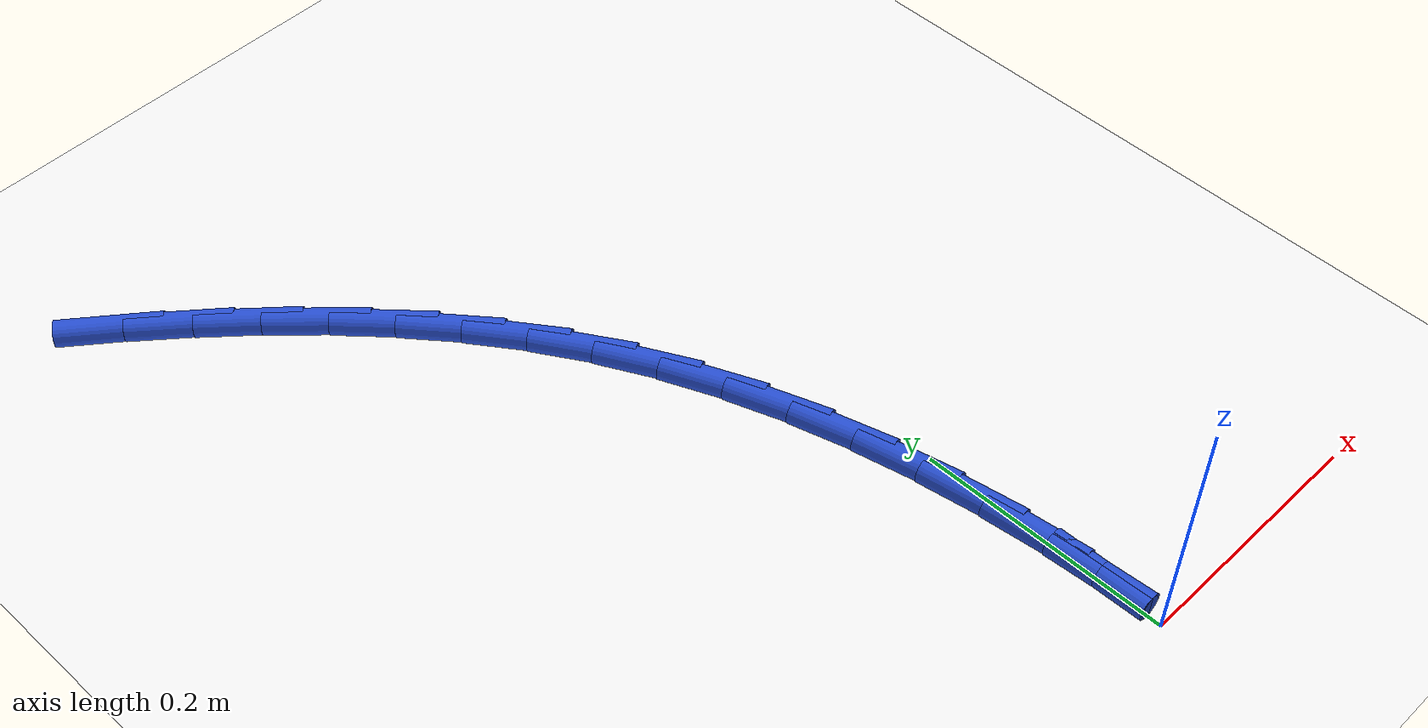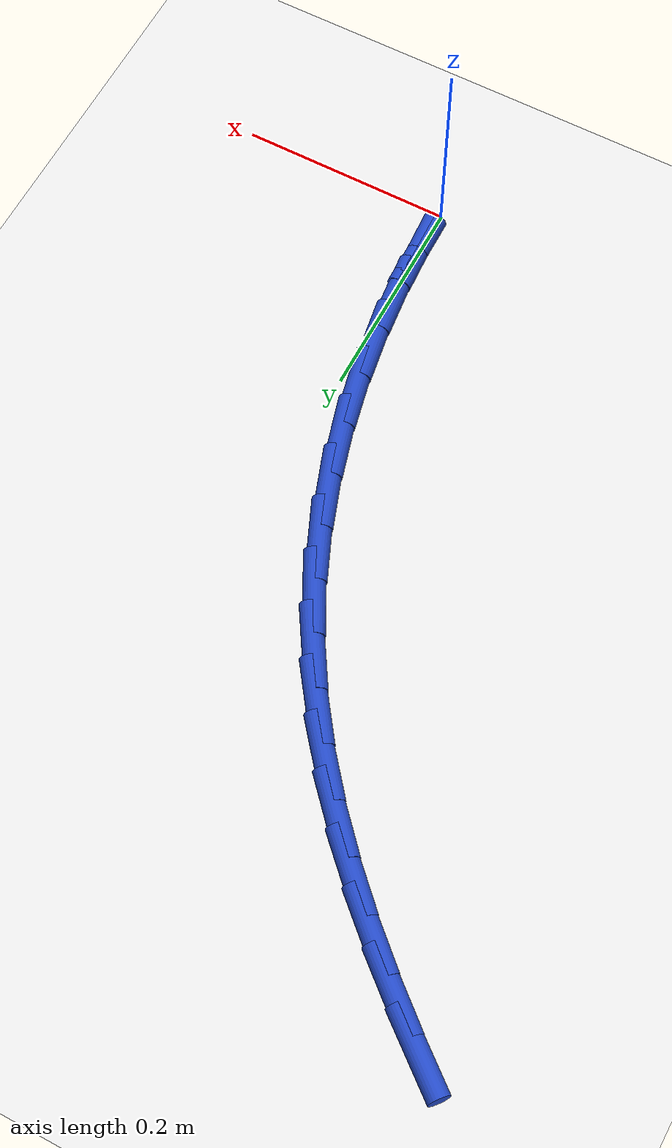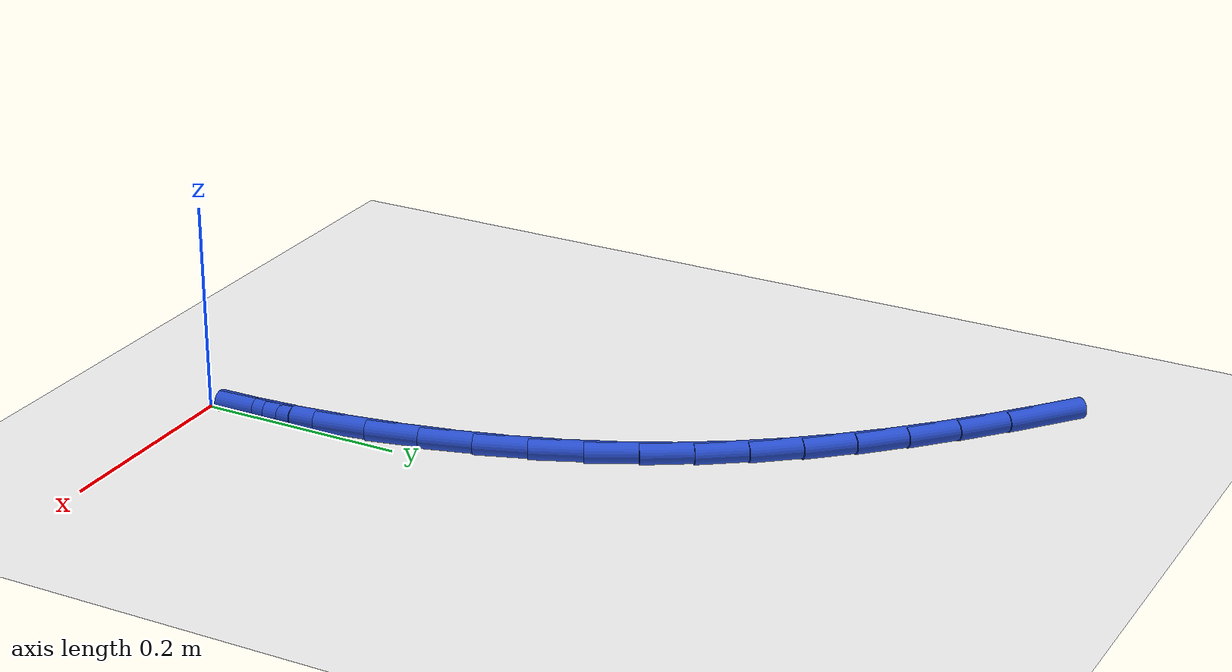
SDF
<sdf version="1.6">
 <world name="default">
  <model name="ground_plane">
   <static>1</static>
   <link name="link">
    <collision name="collision">
     <geometry><plane><normal>0 0 1</normal><size>100 100</size></plane></geometry>
     <surface><friction><ode><mu>100</mu><mu2>50</mu2></ode></friction></surface>
    </collision>
    <visual name="visual">
     <cast_shadows>0</cast_shadows>
     <geometry><plane><normal>0 0 1</normal><size>100 100</size></plane></geometry>
     <material>
      <script><uri>file://media/materials/scripts/gazebo.material</uri><name>Gazebo/WhiteGlow</name></script>
     </material>
    </visual>
   </link>
  </model>
  <model name="line">
   <link name="link_1">
    <pose>-0.0007722326352914149 0.05163585551971858 0.01 0 1.57 -1.5063671672619579</pose>
    <collision name="collision">
     <geometry><cylinder><radius>0.01</radius><length>0.08</length></cylinder></geometry>
    </collision>
    <visual name="visual">
     <material>
      <script><name>Gazebo/Blue</name><uri>file://media/materials/scripts/gazebo.material</uri></script>
     </material>
     <geometry><cylinder><radius>0.01</radius><length>0.08</length></cylinder></geometry>
    </visual>
   </link>
   <link name="link_2">
    <pose>-0.004109959740773728 0.10336875750954569 0.01 0 1.57 -1.4556124186254047</pose>
    <collision name="collision">
     <geometry><cylinder><radius>0.01</radius><length>0.08</length></cylinder></geometry>
    </collision>
    <visual name="visual">
     <material>
      <script><name>Gazebo/Blue</name><uri>file://media/materials/scripts/gazebo.material</uri></script>
     </material>
     <geometry><cylinder><radius>0.01</radius><length>0.08</length></cylinder></geometry>
    </visual>
   </link>
   <link name="link_3">
    <pose>-0.010072090712335637 0.15490148046679625 0.01 0 1.57 -1.4029882069615507</pose>
    <collision name="collision">
     <geometry><cylinder><radius>0.01</radius><length>0.08</length></cylinder></geometry>
    </collision>
    <visual name="visual">
     <material>
      <script><name>Gazebo/Blue</name><uri>file://media/materials/scripts/gazebo.material</uri></script>
     </material>
     <geometry><cylinder><radius>0.01</radius><length>0.08</length></cylinder></geometry>
    </visual>
   </link>
   <link name="link_4">
    <pose>-0.018717534945865894 0.205936798888785 0.01 0 1.57 -1.3479003062743522</pose>
    <collision name="collision">
     <geometry><cylinder><radius>0.01</radius><length>0.08</length></cylinder></geometry>
    </collision>
    <visual name="visual">
     <material>
      <script><name>Gazebo/Blue</name><uri>file://media/materials/scripts/gazebo.material</uri></script>
     </material>
     <geometry><cylinder><radius>0.01</radius><length>0.08</length></cylinder></geometry>
    </visual>
   </link>
   <link name="link_5">
    <pose>-0.030105201837253272 0.2561774872728268 0.01 0 1.57 -1.2897472828954946</pose>
    <collision name="collision">
     <geometry><cylinder><radius>0.01</radius><length>0.08</length></cylinder></geometry>
    </collision>
    <visual name="visual">
     <material>
      <script><name>Gazebo/Blue</name><uri>file://media/materials/scripts/gazebo.material</uri></script>
     </material>
     <geometry><cylinder><radius>0.01</radius><length>0.08</length></cylinder></geometry>
    </visual>
   </link>
   <link name="link_6">
    <pose>-0.04429400078238653 0.30532632011623645 0.01 0 1.57 -1.2279249217404302</pose>
    <collision name="collision">
     <geometry><cylinder><radius>0.01</radius><length>0.08</length></cylinder></geometry>
    </collision>
    <visual name="visual">
     <material>
      <script><name>Gazebo/Blue</name><uri>file://media/materials/scripts/gazebo.material</uri></script>
     </material>
     <geometry><cylinder><radius>0.01</radius><length>0.08</length></cylinder></geometry>
    </visual>
   </link>
   <link name="link_7">
    <pose>-0.0613428411771544 0.35308607191632857 0.01 0 1.57 -1.1618404105958577</pose>
    <collision name="collision">
     <geometry><cylinder><radius>0.01</radius><length>0.08</length></cylinder></geometry>
    </collision>
    <visual name="visual">
     <material>
      <script><name>Gazebo/Blue</name><uri>file://media/materials/scripts/gazebo.material</uri></script>
     </material>
     <geometry><cylinder><radius>0.01</radius><length>0.08</length></cylinder></geometry>
    </visual>
   </link>
   <link name="link_8">
    <pose>-0.08131063241744568 0.3991595171704182 0.01 0 1.57 -1.090956532182371</pose>
    <collision name="collision">
     <geometry><cylinder><radius>0.01</radius><length>0.08</length></cylinder></geometry>
    </collision>
    <visual name="visual">
     <material>
      <script><name>Gazebo/Blue</name><uri>file://media/materials/scripts/gazebo.material</uri></script>
     </material>
     <geometry><cylinder><radius>0.01</radius><length>0.08</length></cylinder></geometry>
    </visual>
   </link>
   <link name="link_9">
    <pose>-0.10425577282244455 0.4432502578206711 0.01 0 1.57 -1.0178648782062596</pose>
    <collision name="collision">
     <geometry><cylinder><radius>0.01</radius><length>0.08</length></cylinder></geometry>
    </collision>
    <visual name="visual">
     <material>
      <script><name>Gazebo/Blue</name><uri>file://media/materials/scripts/gazebo.material</uri></script>
     </material>
     <geometry><cylinder><radius>0.01</radius><length>0.08</length></cylinder></geometry>
    </visual>
   </link>
   <link name="link_10">
    <pose>-0.13014811983562152 0.485205245508208 0.01 0 1.57 -0.9493931200742121</pose>
    <collision name="collision">
     <geometry><cylinder><radius>0.01</radius><length>0.08</length></cylinder></geometry>
    </collision>
    <visual name="visual">
     <material>
      <script><name>Gazebo/Blue</name><uri>file://media/materials/scripts/gazebo.material</uri></script>
     </material>
     <geometry><cylinder><radius>0.01</radius><length>0.08</length></cylinder></geometry>
    </visual>
   </link>
   <link name="link_11">
    <pose>-0.15876892475239887 0.5251767895332603 0.01 0 1.57 -0.8871335537984706</pose>
    <collision name="collision">
     <geometry><cylinder><radius>0.01</radius><length>0.08</length></cylinder></geometry>
    </collision>
    <visual name="visual">
     <material>
      <script><name>Gazebo/Blue</name><uri>file://media/materials/scripts/gazebo.material</uri></script>
     </material>
     <geometry><cylinder><radius>0.01</radius><length>0.08</length></cylinder></geometry>
    </visual>
   </link>
   <link name="link_12">
    <pose>-0.18987524967512165 0.5633563620518326 0.01 0 1.57 -0.8315581066249936</pose>
    <collision name="collision">
     <geometry><cylinder><radius>0.01</radius><length>0.08</length></cylinder></geometry>
    </collision>
    <visual name="visual">
     <material>
      <script><name>Gazebo/Blue</name><uri>file://media/materials/scripts/gazebo.material</uri></script>
     </material>
     <geometry><cylinder><radius>0.01</radius><length>0.08</length></cylinder></geometry>
    </visual>
   </link>
   <link name="link_13">
    <pose>-0.22322415670613488 0.5999354352199295 0.01 0 1.57 -0.7828668469247678</pose>
    <collision name="collision">
     <geometry><cylinder><radius>0.01</radius><length>0.08</length></cylinder></geometry>
    </collision>
    <visual name="visual">
     <material>
      <script><name>Gazebo/Blue</name><uri>file://media/materials/scripts/gazebo.material</uri></script>
     </material>
     <geometry><cylinder><radius>0.01</radius><length>0.08</length></cylinder></geometry>
    </visual>
   </link>
   <link name="link_14">
    <pose>-0.25857270794778336 0.6351054811935553 0.01 0 1.57 -0.741058168596221</pose>
    <collision name="collision">
     <geometry><cylinder><radius>0.01</radius><length>0.08</length></cylinder></geometry>
    </collision>
    <visual name="visual">
     <material>
      <script><name>Gazebo/Blue</name><uri>file://media/materials/scripts/gazebo.material</uri></script>
     </material>
     <geometry><cylinder><radius>0.01</radius><length>0.08</length></cylinder></geometry>
    </visual>
   </link>
   <link name="link_15">
    <pose>-0.2956779655024125 0.669057972128715 0.01 0 1.57 -0.7059989615642379</pose>
    <collision name="collision">
     <geometry><cylinder><radius>0.01</radius><length>0.08</length></cylinder></geometry>
    </collision>
    <visual name="visual">
     <material>
      <script><name>Gazebo/Blue</name><uri>file://media/materials/scripts/gazebo.material</uri></script>
     </material>
     <geometry><cylinder><radius>0.01</radius><length>0.08</length></cylinder></geometry>
    </visual>
   </link>
   <link name="link_16">
    <pose>-0.3342969914723668 0.701984380181413 0.01 0 1.57 -0.6774850338123963</pose>
    <collision name="collision">
     <geometry><cylinder><radius>0.01</radius><length>0.08</length></cylinder></geometry>
    </collision>
    <visual name="visual">
     <material>
      <script><name>Gazebo/Blue</name><uri>file://media/materials/scripts/gazebo.material</uri></script>
     </material>
     <geometry><cylinder><radius>0.01</radius><length>0.08</length></cylinder></geometry>
    </visual>
   </link>
   <link name="link_141">
    <pose>-0.0007653217123523241 0.051680743722206435 0.01 0 1.57 -1.5559887655908955</pose>
    <collision name="collision">
     <geometry><cylinder><radius>0.01</radius><length>0.08</length></cylinder></geometry>
    </collision>
    <visual name="visual">
     <material>
      <script><name>Gazebo/Blue</name><uri>file://media/materials/scripts/gazebo.material</uri></script>
     </material>
     <geometry><cylinder><radius>0.01</radius><length>0.08</length></cylinder></geometry>
    </visual>
   </link>
  </model>
 </world>
</sdf>
